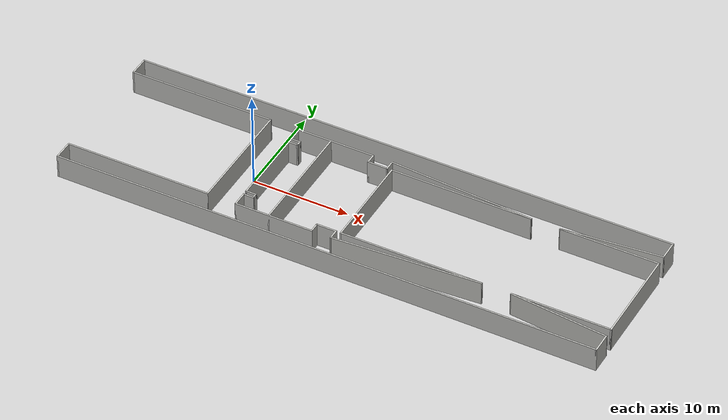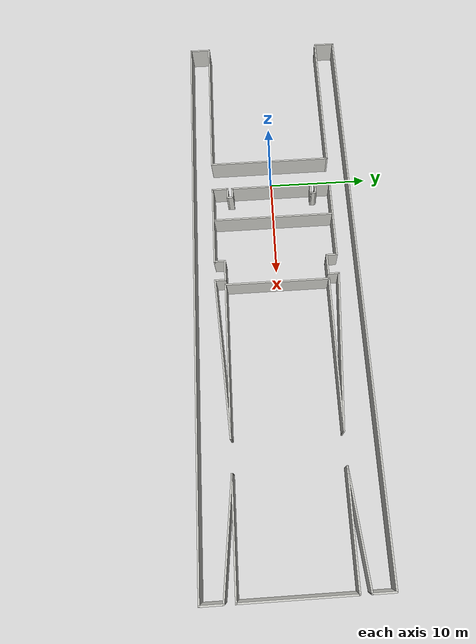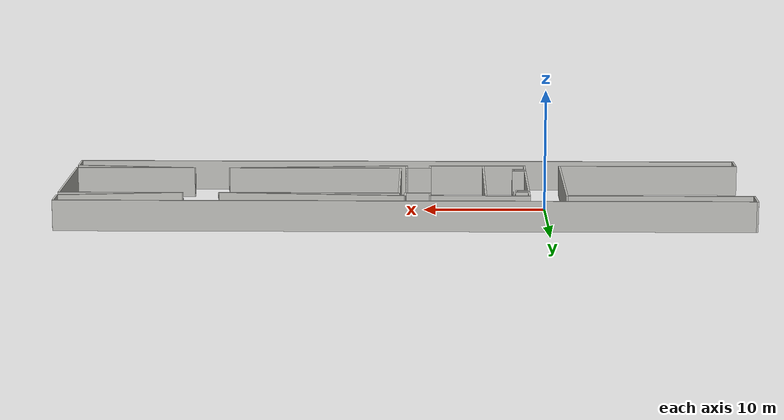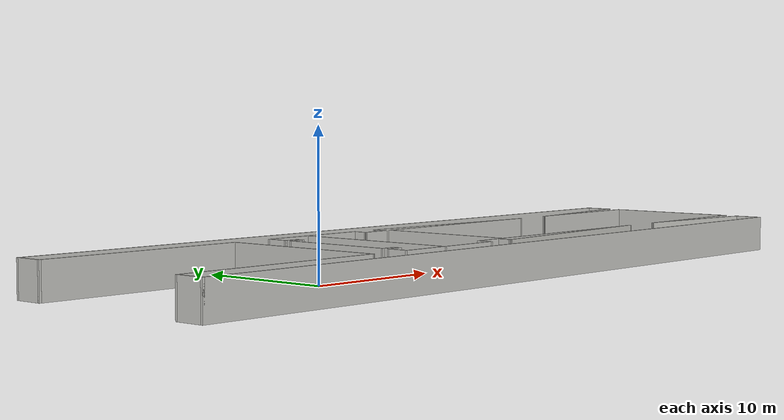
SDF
<?xml version='1.0'?>
<sdf version='1.6'>
  <model name='NURI_3rd'>
    <pose frame=''>11.5035 0 0 0 -0 0</pose>
    <link name='Wall_0'>
      <collision name='Wall_0_Collision'>
        <geometry>
          <box>
            <size>56.15 0.15 2.5</size>
          </box>
        </geometry>
        <pose frame=''>0 0 1.25 0 -0 0</pose>
      </collision>
      <visual name='Wall_0_Visual'>
        <pose frame=''>0 0 1.25 0 -0 0</pose>
        <geometry>
          <box>
            <size>56.15 0.15 2.5</size>
          </box>
        </geometry>
        <material>
          <script>
            <uri>file://media/materials/scripts/gazebo.material</uri>
            <name>Gazebo/CeilingTiled</name>
          </script>
          <ambient>1 1 1 1</ambient>
        </material>
        <meta>
          <layer>0</layer>
        </meta>
      </visual>
      <pose frame=''>-0.003546 -8 0 0 -0 0</pose>
    </link>
    <link name='Wall_10'>
      <collision name='Wall_10_Collision'>
        <geometry>
          <box>
            <size>2.15 0.15 2.5</size>
          </box>
        </geometry>
        <pose frame=''>0 0 1.25 0 -0 0</pose>
      </collision>
      <visual name='Wall_10_Visual'>
        <pose frame=''>0 0 1.25 0 -0 0</pose>
        <geometry>
          <box>
            <size>2.15 0.15 2.5</size>
          </box>
        </geometry>
        <material>
          <script>
            <uri>file://media/materials/scripts/gazebo.material</uri>
            <name>Gazebo/CeilingTiled</name>
          </script>
          <ambient>1 1 1 1</ambient>
        </material>
        <meta>
          <layer>0</layer>
        </meta>
      </visual>
      <pose frame=''>-28.0035 7 0 0 -0 1.5708</pose>
    </link>
    <link name='Wall_12'>
      <collision name='Wall_12_Collision'>
        <geometry>
          <box>
            <size>56.15 0.15 2.5</size>
          </box>
        </geometry>
        <pose frame=''>0 0 1.25 0 -0 0</pose>
      </collision>
      <visual name='Wall_12_Visual'>
        <pose frame=''>0 0 1.25 0 -0 0</pose>
        <geometry>
          <box>
            <size>56.15 0.15 2.5</size>
          </box>
        </geometry>
        <material>
          <script>
            <uri>file://media/materials/scripts/gazebo.material</uri>
            <name>Gazebo/CeilingTiled</name>
          </script>
          <ambient>1 1 1 1</ambient>
        </material>
        <meta>
          <layer>0</layer>
        </meta>
      </visual>
      <pose frame=''>-0.003546 8 0 0 -0 0</pose>
    </link>
    <link name='Wall_14'>
      <collision name='Wall_14_Collision'>
        <geometry>
          <box>
            <size>8.15 0.15 2.5</size>
          </box>
        </geometry>
        <pose frame=''>0 0 1.25 0 -0 0</pose>
      </collision>
      <visual name='Wall_14_Visual'>
        <pose frame=''>0 0 1.25 0 -0 0</pose>
        <geometry>
          <box>
            <size>8.15 0.15 2.5</size>
          </box>
        </geometry>
        <material>
          <script>
            <uri>file://media/materials/scripts/gazebo.material</uri>
            <name>Gazebo/CeilingTiled</name>
          </script>
          <ambient>1 1 1 1</ambient>
        </material>
        <meta>
          <layer>0</layer>
        </meta>
      </visual>
      <pose frame=''>-6.00355 6 0 0 -0 0</pose>
    </link>
    <link name='Wall_16'>
      <collision name='Wall_16_Collision'>
        <geometry>
          <box>
            <size>1.65 0.15 2.5</size>
          </box>
        </geometry>
        <pose frame=''>0 0 1.25 0 -0 0</pose>
      </collision>
      <visual name='Wall_16_Visual'>
        <pose frame=''>0 0 1.25 0 -0 0</pose>
        <geometry>
          <box>
            <size>1.65 0.15 2.5</size>
          </box>
        </geometry>
        <material>
          <script>
            <uri>file://media/materials/scripts/gazebo.material</uri>
            <name>Gazebo/CeilingTiled</name>
          </script>
          <ambient>1 1 1 1</ambient>
        </material>
        <meta>
          <layer>0</layer>
        </meta>
      </visual>
      <pose frame=''>-10.0035 5.25 0 0 -0 -1.5708</pose>
    </link>
    <link name='Wall_18'>
      <collision name='Wall_18_Collision'>
        <geometry>
          <box>
            <size>1.15 0.15 2.5</size>
          </box>
        </geometry>
        <pose frame=''>0 0 1.25 0 -0 0</pose>
      </collision>
      <visual name='Wall_18_Visual'>
        <pose frame=''>0 0 1.25 0 -0 0</pose>
        <geometry>
          <box>
            <size>1.15 0.15 2.5</size>
          </box>
        </geometry>
        <material>
          <script>
            <uri>file://media/materials/scripts/gazebo.material</uri>
            <name>Gazebo/CeilingTiled</name>
          </script>
          <ambient>1 1 1 1</ambient>
        </material>
        <meta>
          <layer>0</layer>
        </meta>
      </visual>
      <pose frame=''>-9.50355 4.5 0 0 -0 0</pose>
    </link>
    <link name='Wall_2'>
      <collision name='Wall_2_Collision'>
        <geometry>
          <box>
            <size>2.15 0.15 2.5</size>
          </box>
        </geometry>
        <pose frame=''>0 0 1.25 0 -0 0</pose>
      </collision>
      <visual name='Wall_2_Visual'>
        <pose frame=''>0 0 1.25 0 -0 0</pose>
        <geometry>
          <box>
            <size>2.15 0.15 2.5</size>
          </box>
        </geometry>
        <material>
          <script>
            <uri>file://media/materials/scripts/gazebo.material</uri>
            <name>Gazebo/CeilingTiled</name>
          </script>
          <ambient>1 1 1 1</ambient>
        </material>
        <meta>
          <layer>0</layer>
        </meta>
      </visual>
      <pose frame=''>-28.0035 -7 0 0 -0 -1.5708</pose>
    </link>
    <link name='Wall_20'>
      <collision name='Wall_20_Collision'>
        <geometry>
          <box>
            <size>0.65 0.15 2.5</size>
          </box>
        </geometry>
        <pose frame=''>0 0 1.25 0 -0 0</pose>
      </collision>
      <visual name='Wall_20_Visual'>
        <pose frame=''>0 0 1.25 0 -0 0</pose>
        <geometry>
          <box>
            <size>0.65 0.15 2.5</size>
          </box>
        </geometry>
        <material>
          <script>
            <uri>file://media/materials/scripts/gazebo.material</uri>
            <name>Gazebo/CeilingTiled</name>
          </script>
          <ambient>1 1 1 1</ambient>
        </material>
        <meta>
          <layer>0</layer>
        </meta>
      </visual>
      <pose frame=''>-9.00355 4.25 0 0 -0 -1.5708</pose>
    </link>
    <link name='Wall_22'>
      <collision name='Wall_22_Collision'>
        <geometry>
          <box>
            <size>1.15 0.15 2.5</size>
          </box>
        </geometry>
        <pose frame=''>0 0 1.25 0 -0 0</pose>
      </collision>
      <visual name='Wall_22_Visual'>
        <pose frame=''>0 0 1.25 0 -0 0</pose>
        <geometry>
          <box>
            <size>1.15 0.15 2.5</size>
          </box>
        </geometry>
        <material>
          <script>
            <uri>file://media/materials/scripts/gazebo.material</uri>
            <name>Gazebo/CeilingTiled</name>
          </script>
          <ambient>1 1 1 1</ambient>
        </material>
        <meta>
          <layer>0</layer>
        </meta>
      </visual>
      <pose frame=''>-9.50355 4 0 0 -0 3.14159</pose>
    </link>
    <link name='Wall_24'>
      <collision name='Wall_24_Collision'>
        <geometry>
          <box>
            <size>8.15 0.15 2.5</size>
          </box>
        </geometry>
        <pose frame=''>0 0 1.25 0 -0 0</pose>
      </collision>
      <visual name='Wall_24_Visual'>
        <pose frame=''>0 0 1.25 0 -0 0</pose>
        <geometry>
          <box>
            <size>8.15 0.15 2.5</size>
          </box>
        </geometry>
        <material>
          <script>
            <uri>file://media/materials/scripts/gazebo.material</uri>
            <name>Gazebo/CeilingTiled</name>
          </script>
          <ambient>1 1 1 1</ambient>
        </material>
        <meta>
          <layer>0</layer>
        </meta>
      </visual>
      <pose frame=''>-10.0035 0 0 0 -0 -1.5708</pose>
    </link>
    <link name='Wall_26'>
      <collision name='Wall_26_Collision'>
        <geometry>
          <box>
            <size>1.15 0.15 2.5</size>
          </box>
        </geometry>
        <pose frame=''>0 0 1.25 0 -0 0</pose>
      </collision>
      <visual name='Wall_26_Visual'>
        <pose frame=''>0 0 1.25 0 -0 0</pose>
        <geometry>
          <box>
            <size>1.15 0.15 2.5</size>
          </box>
        </geometry>
        <material>
          <script>
            <uri>file://media/materials/scripts/gazebo.material</uri>
            <name>Gazebo/CeilingTiled</name>
          </script>
          <ambient>1 1 1 1</ambient>
        </material>
        <meta>
          <layer>0</layer>
        </meta>
      </visual>
      <pose frame=''>-9.50355 -4 0 0 -0 0</pose>
    </link>
    <link name='Wall_28'>
      <collision name='Wall_28_Collision'>
        <geometry>
          <box>
            <size>0.65 0.15 2.5</size>
          </box>
        </geometry>
        <pose frame=''>0 0 1.25 0 -0 0</pose>
      </collision>
      <visual name='Wall_28_Visual'>
        <pose frame=''>0 0 1.25 0 -0 0</pose>
        <geometry>
          <box>
            <size>0.65 0.15 2.5</size>
          </box>
        </geometry>
        <material>
          <script>
            <uri>file://media/materials/scripts/gazebo.material</uri>
            <name>Gazebo/CeilingTiled</name>
          </script>
          <ambient>1 1 1 1</ambient>
        </material>
        <meta>
          <layer>0</layer>
        </meta>
      </visual>
      <pose frame=''>-9.00355 -4.25 0 0 -0 -1.5708</pose>
    </link>
    <link name='Wall_30'>
      <collision name='Wall_30_Collision'>
        <geometry>
          <box>
            <size>1.15 0.15 2.5</size>
          </box>
        </geometry>
        <pose frame=''>0 0 1.25 0 -0 0</pose>
      </collision>
      <visual name='Wall_30_Visual'>
        <pose frame=''>0 0 1.25 0 -0 0</pose>
        <geometry>
          <box>
            <size>1.15 0.15 2.5</size>
          </box>
        </geometry>
        <material>
          <script>
            <uri>file://media/materials/scripts/gazebo.material</uri>
            <name>Gazebo/CeilingTiled</name>
          </script>
          <ambient>1 1 1 1</ambient>
        </material>
        <meta>
          <layer>0</layer>
        </meta>
      </visual>
      <pose frame=''>-9.50355 -4.5 0 0 -0 3.14159</pose>
    </link>
    <link name='Wall_32'>
      <collision name='Wall_32_Collision'>
        <geometry>
          <box>
            <size>1.65 0.15 2.5</size>
          </box>
        </geometry>
        <pose frame=''>0 0 1.25 0 -0 0</pose>
      </collision>
      <visual name='Wall_32_Visual'>
        <pose frame=''>0 0 1.25 0 -0 0</pose>
        <geometry>
          <box>
            <size>1.65 0.15 2.5</size>
          </box>
        </geometry>
        <material>
          <script>
            <uri>file://media/materials/scripts/gazebo.material</uri>
            <name>Gazebo/CeilingTiled</name>
          </script>
          <ambient>1 1 1 1</ambient>
        </material>
        <meta>
          <layer>0</layer>
        </meta>
      </visual>
      <pose frame=''>-10.0035 -5.25 0 0 -0 -1.5708</pose>
    </link>
    <link name='Wall_34'>
      <collision name='Wall_34_Collision'>
        <geometry>
          <box>
            <size>8.15 0.15 2.5</size>
          </box>
        </geometry>
        <pose frame=''>0 0 1.25 0 -0 0</pose>
      </collision>
      <visual name='Wall_34_Visual'>
        <pose frame=''>0 0 1.25 0 -0 0</pose>
        <geometry>
          <box>
            <size>8.15 0.15 2.5</size>
          </box>
        </geometry>
        <material>
          <script>
            <uri>file://media/materials/scripts/gazebo.material</uri>
            <name>Gazebo/CeilingTiled</name>
          </script>
          <ambient>1 1 1 1</ambient>
        </material>
        <meta>
          <layer>0</layer>
        </meta>
      </visual>
      <pose frame=''>-6.00355 -6 0 0 -0 0</pose>
    </link>
    <link name='Wall_36'>
      <collision name='Wall_36_Collision'>
        <geometry>
          <box>
            <size>1.15 0.15 2.5</size>
          </box>
        </geometry>
        <pose frame=''>0 0 1.25 0 -0 0</pose>
      </collision>
      <visual name='Wall_36_Visual'>
        <pose frame=''>0 0 1.25 0 -0 0</pose>
        <geometry>
          <box>
            <size>1.15 0.15 2.5</size>
          </box>
        </geometry>
        <material>
          <script>
            <uri>file://media/materials/scripts/gazebo.material</uri>
            <name>Gazebo/CeilingTiled</name>
          </script>
          <ambient>1 1 1 1</ambient>
        </material>
        <meta>
          <layer>0</layer>
        </meta>
      </visual>
      <pose frame=''>-2.00355 -5.5 0 0 -0 1.5708</pose>
    </link>
    <link name='Wall_38'>
      <collision name='Wall_38_Collision'>
        <geometry>
          <box>
            <size>2.15 0.15 2.5</size>
          </box>
        </geometry>
        <pose frame=''>0 0 1.25 0 -0 0</pose>
      </collision>
      <visual name='Wall_38_Visual'>
        <pose frame=''>0 0 1.25 0 -0 0</pose>
        <geometry>
          <box>
            <size>2.15 0.15 2.5</size>
          </box>
        </geometry>
        <material>
          <script>
            <uri>file://media/materials/scripts/gazebo.material</uri>
            <name>Gazebo/CeilingTiled</name>
          </script>
          <ambient>1 1 1 1</ambient>
        </material>
        <meta>
          <layer>0</layer>
        </meta>
      </visual>
      <pose frame=''>-1.00355 -5 0 0 -0 0</pose>
    </link>
    <link name='Wall_4'>
      <collision name='Wall_4_Collision'>
        <geometry>
          <box>
            <size>15.15 0.15 2.5</size>
          </box>
        </geometry>
        <pose frame=''>0 0 1.25 0 -0 0</pose>
      </collision>
      <visual name='Wall_4_Visual'>
        <pose frame=''>0 0 1.25 0 -0 0</pose>
        <geometry>
          <box>
            <size>15.15 0.15 2.5</size>
          </box>
        </geometry>
        <material>
          <script>
            <uri>file://media/materials/scripts/gazebo.material</uri>
            <name>Gazebo/CeilingTiled</name>
          </script>
          <ambient>1 1 1 1</ambient>
        </material>
        <meta>
          <layer>0</layer>
        </meta>
      </visual>
      <pose frame=''>-20.5035 -6 0 0 -0 0</pose>
    </link>
    <link name='Wall_40'>
      <collision name='Wall_40_Collision'>
        <geometry>
          <box>
            <size>1.15 0.15 2.5</size>
          </box>
        </geometry>
        <pose frame=''>0 0 1.25 0 -0 0</pose>
      </collision>
      <visual name='Wall_40_Visual'>
        <pose frame=''>0 0 1.25 0 -0 0</pose>
        <geometry>
          <box>
            <size>1.15 0.15 2.5</size>
          </box>
        </geometry>
        <material>
          <script>
            <uri>file://media/materials/scripts/gazebo.material</uri>
            <name>Gazebo/CeilingTiled</name>
          </script>
          <ambient>1 1 1 1</ambient>
        </material>
        <meta>
          <layer>0</layer>
        </meta>
      </visual>
      <pose frame=''>-0.003546 -5.5 0 0 -0 -1.5708</pose>
    </link>
    <link name='Wall_42'>
      <collision name='Wall_42_Collision'>
        <geometry>
          <box>
            <size>15.1833 0.15 2.5</size>
          </box>
        </geometry>
        <pose frame=''>0 0 1.25 0 -0 0</pose>
      </collision>
      <visual name='Wall_42_Visual'>
        <pose frame=''>0 0 1.25 0 -0 0</pose>
        <geometry>
          <box>
            <size>15.1833 0.15 2.5</size>
          </box>
        </geometry>
        <material>
          <script>
            <uri>file://media/materials/scripts/gazebo.material</uri>
            <name>Gazebo/CeilingTiled</name>
          </script>
          <ambient>1 1 1 1</ambient>
        </material>
        <meta>
          <layer>0</layer>
        </meta>
      </visual>
      <pose frame=''>7.49645 -5.5 0 0 -0 0.066568</pose>
    </link>
    <link name='Wall_44'>
      <collision name='Wall_44_Collision'>
        <geometry>
          <box>
            <size>14.65 0.15 2.5</size>
          </box>
        </geometry>
        <pose frame=''>0 0 1.25 0 -0 0</pose>
      </collision>
      <visual name='Wall_44_Visual'>
        <pose frame=''>0 0 1.25 0 -0 0</pose>
        <geometry>
          <box>
            <size>14.65 0.15 2.5</size>
          </box>
        </geometry>
        <material>
          <script>
            <uri>file://media/materials/scripts/gazebo.material</uri>
            <name>Gazebo/CeilingTiled</name>
          </script>
          <ambient>1 1 1 1</ambient>
        </material>
        <meta>
          <layer>0</layer>
        </meta>
      </visual>
      <pose frame=''>7.74645 -5 0 0 -0 3.14159</pose>
    </link>
    <link name='Wall_46'>
      <collision name='Wall_46_Collision'>
        <geometry>
          <box>
            <size>10.15 0.15 2.5</size>
          </box>
        </geometry>
        <pose frame=''>0 0 1.25 0 -0 0</pose>
      </collision>
      <visual name='Wall_46_Visual'>
        <pose frame=''>0 0 1.25 0 -0 0</pose>
        <geometry>
          <box>
            <size>10.15 0.15 2.5</size>
          </box>
        </geometry>
        <material>
          <script>
            <uri>file://media/materials/scripts/gazebo.material</uri>
            <name>Gazebo/CeilingTiled</name>
          </script>
          <ambient>1 1 1 1</ambient>
        </material>
        <meta>
          <layer>0</layer>
        </meta>
      </visual>
      <pose frame=''>0.496454 0 0 0 -0 1.5708</pose>
    </link>
    <link name='Wall_48'>
      <collision name='Wall_48_Collision'>
        <geometry>
          <box>
            <size>1.15 0.15 2.5</size>
          </box>
        </geometry>
        <pose frame=''>0 0 1.25 0 -0 0</pose>
      </collision>
      <visual name='Wall_48_Visual'>
        <pose frame=''>0 0 1.25 0 -0 0</pose>
        <geometry>
          <box>
            <size>1.15 0.15 2.5</size>
          </box>
        </geometry>
        <material>
          <script>
            <uri>file://media/materials/scripts/gazebo.material</uri>
            <name>Gazebo/CeilingTiled</name>
          </script>
          <ambient>1 1 1 1</ambient>
        </material>
        <meta>
          <layer>0</layer>
        </meta>
      </visual>
      <pose frame=''>-2.00355 5.5 0 0 -0 -1.5708</pose>
    </link>
    <link name='Wall_50'>
      <collision name='Wall_50_Collision'>
        <geometry>
          <box>
            <size>2.15 0.15 2.5</size>
          </box>
        </geometry>
        <pose frame=''>0 0 1.25 0 -0 0</pose>
      </collision>
      <visual name='Wall_50_Visual'>
        <pose frame=''>0 0 1.25 0 -0 0</pose>
        <geometry>
          <box>
            <size>2.15 0.15 2.5</size>
          </box>
        </geometry>
        <material>
          <script>
            <uri>file://media/materials/scripts/gazebo.material</uri>
            <name>Gazebo/CeilingTiled</name>
          </script>
          <ambient>1 1 1 1</ambient>
        </material>
        <meta>
          <layer>0</layer>
        </meta>
      </visual>
      <pose frame=''>-1.00355 5 0 0 -0 0</pose>
    </link>
    <link name='Wall_52'>
      <collision name='Wall_52_Collision'>
        <geometry>
          <box>
            <size>1.15 0.15 2.5</size>
          </box>
        </geometry>
        <pose frame=''>0 0 1.25 0 -0 0</pose>
      </collision>
      <visual name='Wall_52_Visual'>
        <pose frame=''>0 0 1.25 0 -0 0</pose>
        <geometry>
          <box>
            <size>1.15 0.15 2.5</size>
          </box>
        </geometry>
        <material>
          <script>
            <uri>file://media/materials/scripts/gazebo.material</uri>
            <name>Gazebo/CeilingTiled</name>
          </script>
          <ambient>1 1 1 1</ambient>
        </material>
        <meta>
          <layer>0</layer>
        </meta>
      </visual>
      <pose frame=''>-0.003546 5.5 0 0 -0 1.5708</pose>
    </link>
    <link name='Wall_54'>
      <collision name='Wall_54_Collision'>
        <geometry>
          <box>
            <size>15.1833 0.15 2.5</size>
          </box>
        </geometry>
        <pose frame=''>0 0 1.25 0 -0 0</pose>
      </collision>
      <visual name='Wall_54_Visual'>
        <pose frame=''>0 0 1.25 0 -0 0</pose>
        <geometry>
          <box>
            <size>15.1833 0.15 2.5</size>
          </box>
        </geometry>
        <material>
          <script>
            <uri>file://media/materials/scripts/gazebo.material</uri>
            <name>Gazebo/CeilingTiled</name>
          </script>
          <ambient>1 1 1 1</ambient>
        </material>
        <meta>
          <layer>0</layer>
        </meta>
      </visual>
      <pose frame=''>7.49645 5.5 0 0 -0 -0.066568</pose>
    </link>
    <link name='Wall_56'>
      <collision name='Wall_56_Collision'>
        <geometry>
          <box>
            <size>14.65 0.15 2.5</size>
          </box>
        </geometry>
        <pose frame=''>0 0 1.25 0 -0 0</pose>
      </collision>
      <visual name='Wall_56_Visual'>
        <pose frame=''>0 0 1.25 0 -0 0</pose>
        <geometry>
          <box>
            <size>14.65 0.15 2.5</size>
          </box>
        </geometry>
        <material>
          <script>
            <uri>file://media/materials/scripts/gazebo.material</uri>
            <name>Gazebo/CeilingTiled</name>
          </script>
          <ambient>1 1 1 1</ambient>
        </material>
        <meta>
          <layer>0</layer>
        </meta>
      </visual>
      <pose frame=''>7.74645 5 0 0 -0 0</pose>
    </link>
    <link name='Wall_58'>
      <collision name='Wall_58_Collision'>
        <geometry>
          <box>
            <size>10.1999 0.15 2.5</size>
          </box>
        </geometry>
        <pose frame=''>0 0 1.25 0 -0 0</pose>
      </collision>
      <visual name='Wall_58_Visual'>
        <pose frame=''>0 0 1.25 0 -0 0</pose>
        <geometry>
          <box>
            <size>10.1999 0.15 2.5</size>
          </box>
        </geometry>
        <material>
          <script>
            <uri>file://media/materials/scripts/gazebo.material</uri>
            <name>Gazebo/CeilingTiled</name>
          </script>
          <ambient>1 1 1 1</ambient>
        </material>
        <meta>
          <layer>0</layer>
        </meta>
      </visual>
      <pose frame=''>22.9965 5.5 0 0 -0 0.099669</pose>
    </link>
    <link name='Wall_6'>
      <collision name='Wall_6_Collision'>
        <geometry>
          <box>
            <size>12.15 0.15 2.5</size>
          </box>
        </geometry>
        <pose frame=''>0 0 1.25 0 -0 0</pose>
      </collision>
      <visual name='Wall_6_Visual'>
        <pose frame=''>0 0 1.25 0 -0 0</pose>
        <geometry>
          <box>
            <size>12.15 0.15 2.5</size>
          </box>
        </geometry>
        <material>
          <script>
            <uri>file://media/materials/scripts/gazebo.material</uri>
            <name>Gazebo/CeilingTiled</name>
          </script>
          <ambient>1 1 1 1</ambient>
        </material>
        <meta>
          <layer>0</layer>
        </meta>
      </visual>
      <pose frame=''>-13.0035 0 0 0 -0 1.5708</pose>
    </link>
    <link name='Wall_60'>
      <collision name='Wall_60_Collision'>
        <geometry>
          <box>
            <size>2.15 0.15 2.5</size>
          </box>
        </geometry>
        <pose frame=''>0 0 1.25 0 -0 0</pose>
      </collision>
      <visual name='Wall_60_Visual'>
        <pose frame=''>0 0 1.25 0 -0 0</pose>
        <geometry>
          <box>
            <size>2.15 0.15 2.5</size>
          </box>
        </geometry>
        <material>
          <script>
            <uri>file://media/materials/scripts/gazebo.material</uri>
            <name>Gazebo/CeilingTiled</name>
          </script>
          <ambient>1 1 1 1</ambient>
        </material>
        <meta>
          <layer>0</layer>
        </meta>
      </visual>
      <pose frame=''>27.9965 7 0 0 -0 -1.5708</pose>
    </link>
    <link name='Wall_62'>
      <collision name='Wall_62_Collision'>
        <geometry>
          <box>
            <size>2.15 0.15 2.5</size>
          </box>
        </geometry>
        <pose frame=''>0 0 1.25 0 -0 0</pose>
      </collision>
      <visual name='Wall_62_Visual'>
        <pose frame=''>0 0 1.25 0 -0 0</pose>
        <geometry>
          <box>
            <size>2.15 0.15 2.5</size>
          </box>
        </geometry>
        <material>
          <script>
            <uri>file://media/materials/scripts/gazebo.material</uri>
            <name>Gazebo/CeilingTiled</name>
          </script>
          <ambient>1 1 1 1</ambient>
        </material>
        <meta>
          <layer>0</layer>
        </meta>
      </visual>
      <pose frame=''>27.9965 -7 0 0 -0 1.5708</pose>
    </link>
    <link name='Wall_64'>
      <collision name='Wall_64_Collision'>
        <geometry>
          <box>
            <size>10.1999 0.15 2.5</size>
          </box>
        </geometry>
        <pose frame=''>0 0 1.25 0 -0 0</pose>
      </collision>
      <visual name='Wall_64_Visual'>
        <pose frame=''>0 0 1.25 0 -0 0</pose>
        <geometry>
          <box>
            <size>10.1999 0.15 2.5</size>
          </box>
        </geometry>
        <material>
          <script>
            <uri>file://media/materials/scripts/gazebo.material</uri>
            <name>Gazebo/CeilingTiled</name>
          </script>
          <ambient>1 1 1 1</ambient>
        </material>
        <meta>
          <layer>0</layer>
        </meta>
      </visual>
      <pose frame=''>22.9965 -5.5 0 0 -0 -0.099669</pose>
    </link>
    <link name='Wall_66'>
      <collision name='Wall_66_Collision'>
        <geometry>
          <box>
            <size>10.15 0.15 2.5</size>
          </box>
        </geometry>
        <pose frame=''>0 0 1.25 0 -0 0</pose>
      </collision>
      <visual name='Wall_66_Visual'>
        <pose frame=''>0 0 1.25 0 -0 0</pose>
        <geometry>
          <box>
            <size>10.15 0.15 2.5</size>
          </box>
        </geometry>
        <material>
          <script>
            <uri>file://media/materials/scripts/gazebo.material</uri>
            <name>Gazebo/CeilingTiled</name>
          </script>
          <ambient>1 1 1 1</ambient>
        </material>
        <meta>
          <layer>0</layer>
        </meta>
      </visual>
      <pose frame=''>22.9965 -5 0 0 -0 0</pose>
    </link>
    <link name='Wall_68'>
      <collision name='Wall_68_Collision'>
        <geometry>
          <box>
            <size>10.15 0.15 2.5</size>
          </box>
        </geometry>
        <pose frame=''>0 0 1.25 0 -0 0</pose>
      </collision>
      <visual name='Wall_68_Visual'>
        <pose frame=''>0 0 1.25 0 -0 0</pose>
        <geometry>
          <box>
            <size>10.15 0.15 2.5</size>
          </box>
        </geometry>
        <material>
          <script>
            <uri>file://media/materials/scripts/gazebo.material</uri>
            <name>Gazebo/CeilingTiled</name>
          </script>
          <ambient>1 1 1 1</ambient>
        </material>
        <meta>
          <layer>0</layer>
        </meta>
      </visual>
      <pose frame=''>22.9965 5 0 0 -0 0</pose>
    </link>
    <link name='Wall_70'>
      <collision name='Wall_70_Collision'>
        <geometry>
          <box>
            <size>10.15 0.15 2.5</size>
          </box>
        </geometry>
        <pose frame=''>0 0 1.25 0 -0 0</pose>
      </collision>
      <visual name='Wall_70_Visual'>
        <pose frame=''>0 0 1.25 0 -0 0</pose>
        <geometry>
          <box>
            <size>10.15 0.15 2.5</size>
          </box>
        </geometry>
        <material>
          <script>
            <uri>file://media/materials/scripts/gazebo.material</uri>
            <name>Gazebo/CeilingTiled</name>
          </script>
          <ambient>1 1 1 1</ambient>
        </material>
        <meta>
          <layer>0</layer>
        </meta>
      </visual>
      <pose frame=''>27.9965 0 0 0 -0 -1.5708</pose>
    </link>
    <link name='Wall_72'>
      <collision name='Wall_72_Collision'>
        <geometry>
          <box>
            <size>12.15 0.15 2.5</size>
          </box>
        </geometry>
        <pose frame=''>0 0 1.25 0 -0 0</pose>
      </collision>
      <visual name='Wall_72_Visual'>
        <pose frame=''>0 0 1.25 0 -0 0</pose>
        <geometry>
          <box>
            <size>12.15 0.15 2.5</size>
          </box>
        </geometry>
        <material>
          <script>
            <uri>file://media/materials/scripts/gazebo.material</uri>
            <name>Gazebo/CeilingTiled</name>
          </script>
          <ambient>1 1 1 1</ambient>
        </material>
        <meta>
          <layer>0</layer>
        </meta>
      </visual>
      <pose frame=''>-6.50355 0 0 0 -0 -1.5708</pose>
    </link>
    <link name='Wall_8'>
      <collision name='Wall_8_Collision'>
        <geometry>
          <box>
            <size>15.15 0.15 2.5</size>
          </box>
        </geometry>
        <pose frame=''>0 0 1.25 0 -0 0</pose>
      </collision>
      <visual name='Wall_8_Visual'>
        <pose frame=''>0 0 1.25 0 -0 0</pose>
        <geometry>
          <box>
            <size>15.15 0.15 2.5</size>
          </box>
        </geometry>
        <material>
          <script>
            <uri>file://media/materials/scripts/gazebo.material</uri>
            <name>Gazebo/CeilingTiled</name>
          </script>
          <ambient>1 1 1 1</ambient>
        </material>
        <meta>
          <layer>0</layer>
        </meta>
      </visual>
      <pose frame=''>-20.5035 6 0 0 -0 3.14159</pose>
    </link>
    <static>1</static>
  </model>
</sdf>
